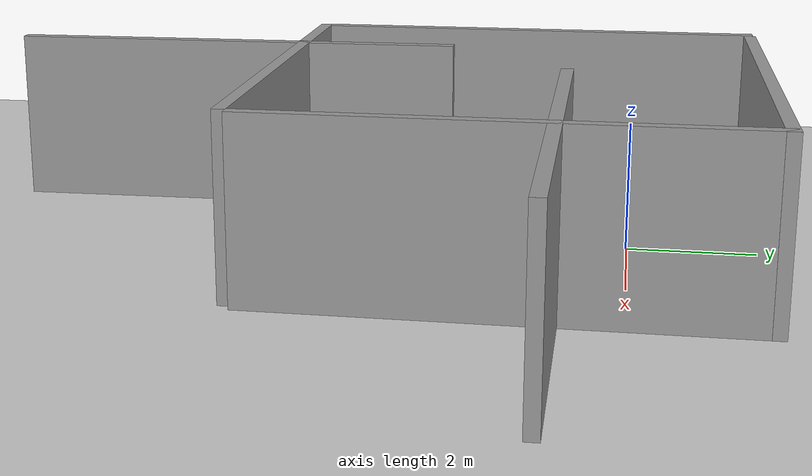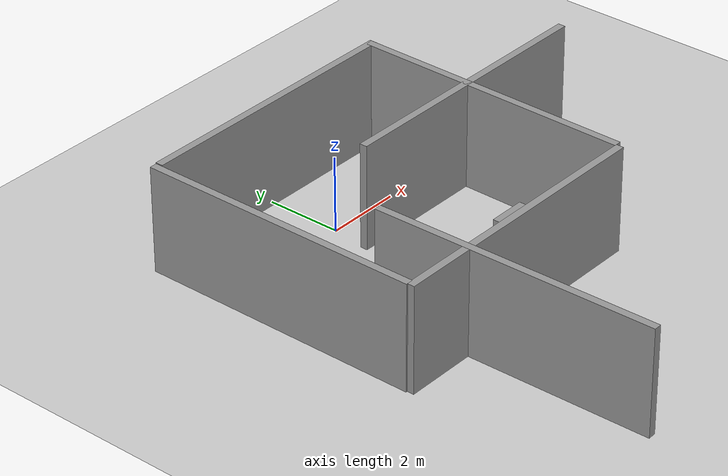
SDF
<sdf version="1.4">
 <world name="default">
  <light name="sun" type="directional">
   <pose>0 0 10 0 -0 0</pose>
   <diffuse>0.8 0.8 0.8 1</diffuse>
   <specular>0.2 0.2 0.2 1</specular>
   <attenuation>
    <range>1000</range>
    <constant>0.9</constant>
    <linear>0.01</linear>
    <quadratic>0.001</quadratic>
   </attenuation>
   <direction>-0.5 0.1 -0.9</direction>
  </light>
  <model name="ground_plane">
   <static>1</static>
   <link name="link">
    <collision name="collision">
     <geometry><plane><normal>0 0 1</normal><size>100 100</size></plane></geometry>
     <surface><friction><ode><mu>100</mu><mu2>50</mu2></ode></friction></surface>
    </collision>
    <visual name="visual">
     <cast_shadows>0</cast_shadows>
     <geometry><plane><normal>0 0 1</normal><size>100 100</size></plane></geometry>
     <material>
      <script><uri>file://media/materials/scripts/gazebo.material</uri><name>Gazebo/Grey</name></script>
     </material>
    </visual>
    <velocity_decay><linear>0</linear><angular>0</angular></velocity_decay>
   </link>
  </model>
  <physics type="ode">
   <max_step_size>0.01</max_step_size>
   <real_time_factor>1</real_time_factor>
   <real_time_update_rate>100</real_time_update_rate>
   <gravity>0 0 -9.8</gravity>
  </physics>
  <scene><ambient>0.4 0.4 0.4 1</ambient><background>0.7 0.7 0.7 1</background><shadows>1</shadows></scene>
  <spherical_coordinates>
   <surface_model>EARTH_WGS84</surface_model>
   <latitude_deg>0</latitude_deg>
   <longitude_deg>0</longitude_deg>
   <elevation>0</elevation>
   <heading_deg>0</heading_deg>
  </spherical_coordinates>
  <model name="grey_wall">
   <static>1</static>
   <link name="link">
    <pose>0 0 1.4 0 -0 0</pose>
    <collision name="collision"><geometry><box><size>7.5 0.2 2.8</size></box></geometry></collision>
    <visual name="visual">
     <cast_shadows>0</cast_shadows>
     <geometry><box><size>7.5 0.2 2.8</size></box></geometry>
     <material>
      <script>
       <uri>model://grey_wall/materials/scripts</uri>
       <uri>model://grey_wall/materials/textures</uri>
       <name>vrc/grey_wall</name>
      </script>
     </material>
    </visual>
    <velocity_decay><linear>0</linear><angular>0</angular></velocity_decay>
   </link>
   <pose>3.62547 -1.6721 0 0 -0 1.56498</pose>
  </model>
  <model name="grey_wall_0">
   <static>1</static>
   <link name="link">
    <pose>0 0 1.4 0 -0 0</pose>
    <collision name="collision"><geometry><box><size>7.5 0.2 2.8</size></box></geometry></collision>
    <visual name="visual">
     <cast_shadows>0</cast_shadows>
     <geometry><box><size>7.5 0.2 2.8</size></box></geometry>
     <material>
      <script>
       <uri>model://grey_wall/materials/scripts</uri>
       <uri>model://grey_wall/materials/textures</uri>
       <name>vrc/grey_wall</name>
      </script>
     </material>
    </visual>
    <velocity_decay><linear>0</linear><angular>0</angular></velocity_decay>
   </link>
   <pose>-0.19049 -5.51973 0 0 -0 0</pose>
  </model>
  <model name="grey_wall_2">
   <static>1</static>
   <link name="link">
    <pose>0 0 1.4 0 -0 0</pose>
    <collision name="collision"><geometry><box><size>7.5 0.2 2.8</size></box></geometry></collision>
    <visual name="visual">
     <cast_shadows>0</cast_shadows>
     <geometry><box><size>7.5 0.2 2.8</size></box></geometry>
     <material>
      <script>
       <uri>model://grey_wall/materials/scripts</uri>
       <uri>model://grey_wall/materials/textures</uri>
       <name>vrc/grey_wall</name>
      </script>
     </material>
    </visual>
    <velocity_decay><linear>0</linear><angular>0</angular></velocity_decay>
   </link>
   <pose>0 2 0 0 -0 0</pose>
  </model>
  <model name="grey_wall_3">
   <static>1</static>
   <link name="link">
    <pose>0 0 1.4 0 -0 0</pose>
    <collision name="collision"><geometry><box><size>7.5 0.2 2.8</size></box></geometry></collision>
    <visual name="visual">
     <cast_shadows>0</cast_shadows>
     <geometry><box><size>7.5 0.2 2.8</size></box></geometry>
     <material>
      <script>
       <uri>model://grey_wall/materials/scripts</uri>
       <uri>model://grey_wall/materials/textures</uri>
       <name>vrc/grey_wall</name>
      </script>
     </material>
    </visual>
    <velocity_decay><linear>0</linear><angular>0</angular></velocity_decay>
   </link>
   <pose>-3.87748 -1.68956 0 0 0 -1.57059</pose>
  </model>
  <model name="unit_box_1">
   <pose>2 -4 0.5 0 -0 0</pose>
   <link name="link">
    <inertial>
     <mass>1</mass>
     <inertia><ixx>1</ixx><ixy>0</ixy><ixz>0</ixz><iyy>1</iyy><iyz>0</iyz><izz>1</izz></inertia>
    </inertial>
    <collision name="collision"><geometry><box><size>1 1 1</size></box></geometry></collision>
    <visual name="visual">
     <geometry><box><size>1 1 1</size></box></geometry>
     <material>
      <script><uri>file://media/materials/scripts/gazebo.material</uri><name>Gazebo/Grey</name></script>
     </material>
    </visual>
    <velocity_decay><linear>0</linear><angular>0</angular></velocity_decay>
   </link>
   <static>0</static>
  </model>
  <model name="grey_wall_1">
   <static>1</static>
   <link name="link">
    <pose>0 0 1.4 0 -0 0</pose>
    <collision name="collision"><geometry><box><size>7.5 0.2 2.8</size></box></geometry></collision>
    <visual name="visual">
     <cast_shadows>0</cast_shadows>
     <geometry><box><size>7.5 0.2 2.8</size></box></geometry>
     <material>
      <script>
       <uri>model://grey_wall/materials/scripts</uri>
       <uri>model://grey_wall/materials/textures</uri>
       <name>vrc/grey_wall</name>
      </script>
     </material>
    </visual>
    <velocity_decay><linear>0</linear><angular>0</angular></velocity_decay>
   </link>
   <pose>3.5867 -1 0 0 -0 0</pose>
  </model>
  <model name="grey_wall_4">
   <static>1</static>
   <link name="link">
    <pose>0 0 1.4 0 -0 0</pose>
    <collision name="collision"><geometry><box><size>7.5 0.2 2.8</size></box></geometry></collision>
    <visual name="visual">
     <cast_shadows>0</cast_shadows>
     <geometry><box><size>7.5 0.2 2.8</size></box></geometry>
     <material>
      <script>
       <uri>model://grey_wall/materials/scripts</uri>
       <uri>model://grey_wall/materials/textures</uri>
       <name>vrc/grey_wall</name>
      </script>
     </material>
    </visual>
    <velocity_decay><linear>0</linear><angular>0</angular></velocity_decay>
   </link>
   <pose>-1.93853 -6.7182 0 0 -0 1.58659</pose>
  </model>
 </world>
</sdf>
